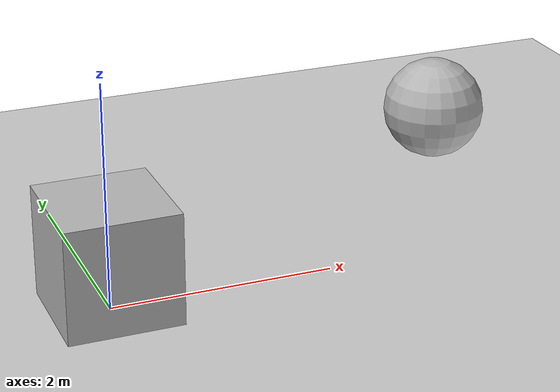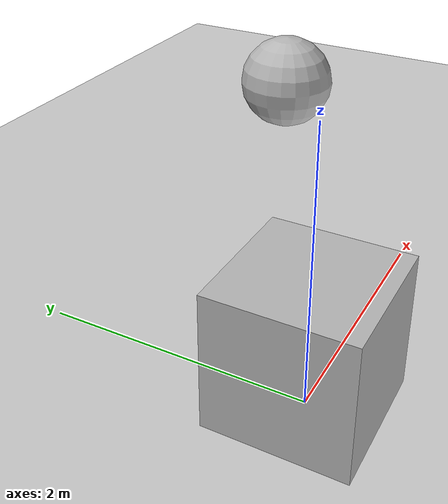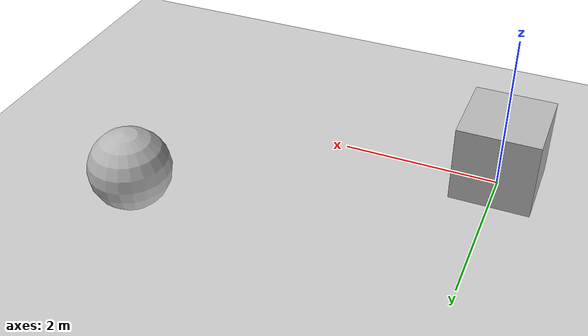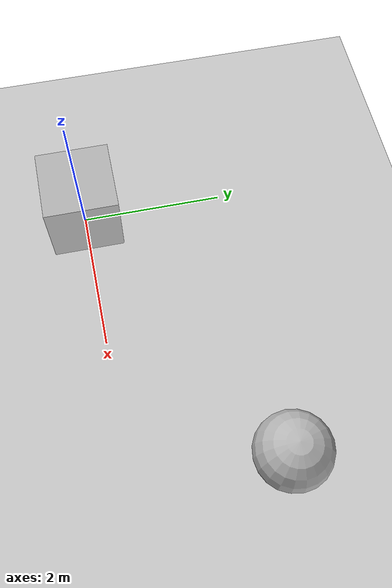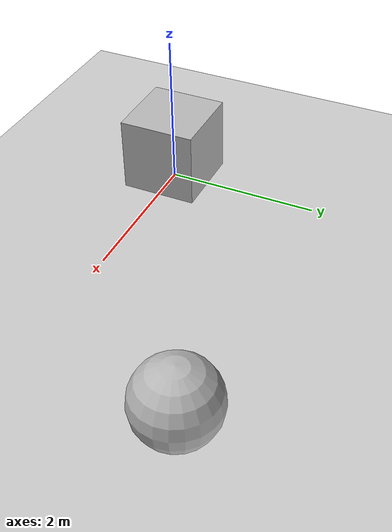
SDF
<?xml version="1.0" ?>
<sdf version="1.6">
  <world name="default">
    <!-- A global light source -->
    <include>
      <uri>model://sun</uri>
    </include>
    <!-- A ground plane -->
    <include>
      <uri>model://ground_plane</uri>
    </include>

    <gui>
      <camera name="user_camera">
        <pose>-2 0 2 0 0 0</pose>
        <track_visual>
          <name>box</name>
          <static>false</static>
          <min_dist>0</min_dist>
          <max_dist>8</max_dist>
        </track_visual>
      </camera>
    </gui>

    <model name="box">
      <pose>0 0 0.5 0 0 0</pose>
      <link name="link">
        <kinematic>true</kinematic>
        <collision name="collision">
          <geometry>
            <box>
              <size>1 1 1</size>
            </box>
          </geometry>
          <surface>
            <friction>
              <ode>
                <mu>0.0</mu>
                <mu2>0.0</mu2>
              </ode>
            </friction>
          </surface>
        </collision>
        <visual name="visual">
          <geometry>
            <box>
              <size>1 1 1</size>
            </box>
          </geometry>
        </visual>
      </link>

      <!-- Apply a random velocity to the specified link-->
      <!-- In this example, we move a box around. A key property of the link
           is the frictionless surface -->
      <plugin name="random" filename="libRandomVelocityPlugin.so">

        <!-- Name of the link in this model that receives the velocity -->
        <link>link</link>

        <!-- Initial velocity that is applied to the link -->
        <initial_velocity>0 0.5 0</initial_velocity>

        <!-- Scaling factor that is used to compute a new velocity -->
        <velocity_factor>0.5</velocity_factor>

        <!-- Time, in seconds, between new velocities -->
        <update_period>5</update_period>

        <!-- Clamp the Z velocity value to zero. You can also clamp x and
             y values -->
        <min_z>0</min_z>
        <max_z>0</max_z>
      </plugin>
    </model>

    <model name="sphere">
      <pose>4 2 0.5 0 0 0</pose>
      <link name="link">
        <collision name="collision">
          <geometry>
            <sphere>
              <radius>0.5</radius>
            </sphere>
          </geometry>
        </collision>
        <visual name="visual">
          <geometry>
            <sphere>
              <radius>0.5</radius>
            </sphere>
          </geometry>
        </visual>
      </link>

      <plugin name="initial" filename="libInitialVelocityPlugin.so">
        <linear>0 0 0</linear>
        <angular>0 0 1</angular>
      </plugin>
    </model>
  </world>
</sdf>
